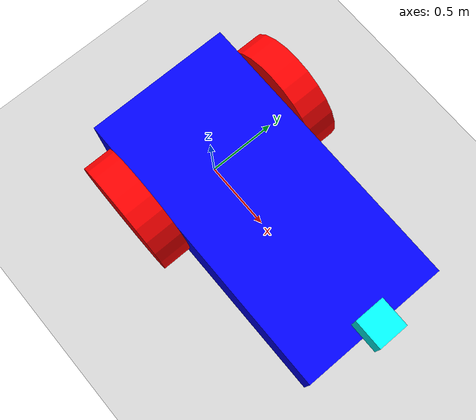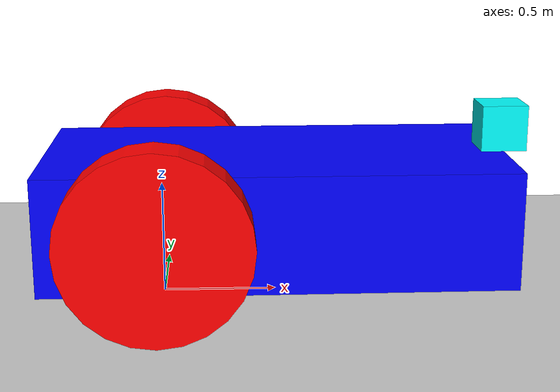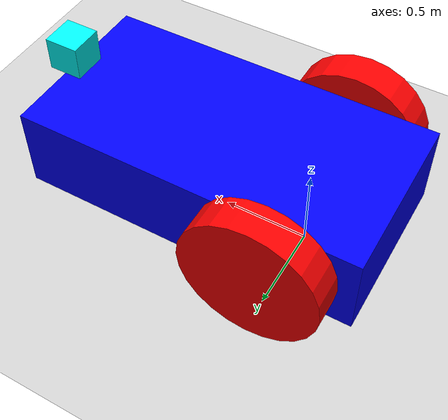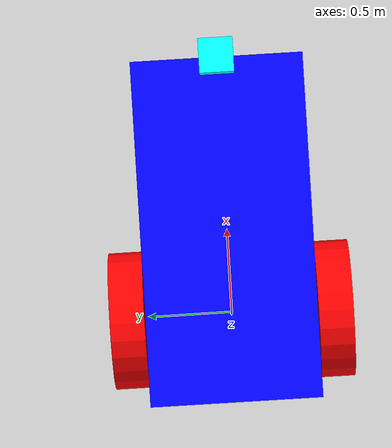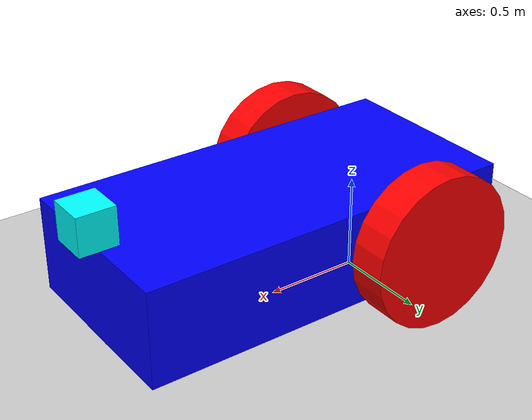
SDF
<?xml version="1.0" ?>
<sdf version="1.8">
  <world name="demo">

    <light name="sun" type="directional">
      <cast_shadows>true</cast_shadows>
      <pose>0 0 10 0 0 0</pose>
      <diffuse>0.8 0.8 0.8 1</diffuse>
      <specular>0.2 0.2 0.2 1</specular>
      <attenuation>
        <range>1000</range>
        <constant>0.9</constant>
        <linear>0.01</linear>
        <quadratic>0.001</quadratic>
      </attenuation>
      <direction>-0.5 0.1 -0.9</direction>
    </light>

    <model name="ground_plane">
      <static>true</static>
      <link name="link">
        <collision name="collision">
          <geometry>
            <plane>
              <normal>0 0 1</normal>
              <size>100 100</size>
            </plane>
          </geometry>
        </collision>
        <visual name="visual">
          <geometry>
            <plane>
              <normal>0 0 1</normal>
              <size>100 100</size>
            </plane>
          </geometry>
          <material>
            <ambient>0.8 0.8 0.8 1</ambient>
            <diffuse>0.8 0.8 0.8 1</diffuse>
            <specular>0.8 0.8 0.8 1</specular>
          </material>
        </visual>
      </link>
    </model>

    <model name="car">
      <self_collide>true</self_collide>
      <pose>0 0 0 0 0 0</pose>
      <include merge="true">
        <uri>car</uri>
      </include>

      <plugin
        filename="gz-sim-joint-state-publisher-system"
        name="gz::sim::systems::JointStatePublisher">
      </plugin>

      <plugin
        filename="gz-sim-pose-publisher-system"
        name="gz::sim::systems::PosePublisher">
        <publish_link_pose>true</publish_link_pose>
        <use_pose_vector_msg>true</use_pose_vector_msg>
        <static_publisher>true</static_publisher>
        <static_update_frequency>1</static_update_frequency>
      </plugin>

      <plugin
        filename="gz-sim-odometry-publisher-system"
        name="gz::sim::systems::OdometryPublisher">
        <odom_frame>car/odom</odom_frame>
        <robot_base_frame>car</robot_base_frame>
      </plugin>

    </model>
  </world>
</sdf>

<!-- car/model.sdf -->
<sdf version="1.11">
    <model name='car' canonical_link='chassis'>

        <!--chassis-->
        <link name='chassis'>
            <pose relative_to='__model__'>0.5 0 0.4 0 0 0</pose>
            <inertial> <!--inertial properties of the link mass, inertia matix-->
                <mass>1.14395</mass>
                <inertia>
                    <ixx>0.095329</ixx>
                    <ixy>0</ixy>
                    <ixz>0</ixz>
                    <iyy>0.381317</iyy>
                    <iyz>0</iyz>
                    <izz>0.476646</izz>
                </inertia>
            </inertial>
            <visual name='visual'>
                <geometry>
                    <box>
                        <size>2.0 1.0 0.5</size>
                    </box>
                </geometry>
                <!--Color of the link-->
                <material>
                    <ambient>0.0 0.0 1.0 1</ambient>
                    <diffuse>0.0 0.0 1.0 1</diffuse>
                    <specular>0.0 0.0 1.0 1</specular>
                </material>
            </visual>
            <collision name='collision'>
                <geometry>
                    <box>
                        <size>2.0 1.0 0.5</size>
                    </box>
                </geometry>
            </collision>
        </link>

        <!--Left wheel-->
        <link name='left_wheel'>
            <pose relative_to="chassis">-0.5 0.6 0 -1.5707 0 0</pose> <!--angles are in radian-->
            <inertial>
                <mass>1</mass>
                <inertia>
                    <ixx>0.043333</ixx>
                    <ixy>0</ixy>
                    <ixz>0</ixz>
                    <iyy>0.043333</iyy>
                    <iyz>0</iyz>
                    <izz>0.08</izz>
                </inertia>
            </inertial>
            <visual name='visual'>
                <geometry>
                    <cylinder>
                        <radius>0.4</radius>
                        <length>0.2</length>
                    </cylinder>
                </geometry>
                <material>
                    <ambient>1.0 0.0 0.0 1</ambient>
                    <diffuse>1.0 0.0 0.0 1</diffuse>
                    <specular>1.0 0.0 0.0 1</specular>
                </material>
            </visual>
            <collision name='collision'>
                <geometry>
                    <cylinder>
                        <radius>0.4</radius>
                        <length>0.2</length>
                    </cylinder>
                </geometry>
            </collision>
        </link>

        <!--The same as left wheel but with different position-->
        <link name='right_wheel'>
            <pose relative_to="chassis">-0.5 -0.6 0 -1.5707 0 0</pose> <!--angles are in radian-->
            <inertial>
                <mass>1</mass>
                <inertia>
                    <ixx>0.043333</ixx>
                    <ixy>0</ixy>
                    <ixz>0</ixz>
                    <iyy>0.043333</iyy>
                    <iyz>0</iyz>
                    <izz>0.08</izz>
                </inertia>
            </inertial>
            <visual name='visual'>
                <geometry>
                    <cylinder>
                        <radius>0.4</radius>
                        <length>0.2</length>
                    </cylinder>
                </geometry>
                <material>
                    <ambient>1.0 0.0 0.0 1</ambient>
                    <diffuse>1.0 0.0 0.0 1</diffuse>
                    <specular>1.0 0.0 0.0 1</specular>
                </material>
            </visual>
            <collision name='collision'>
                <geometry>
                    <cylinder>
                        <radius>0.4</radius>
                        <length>0.2</length>
                    </cylinder>
                </geometry>
            </collision>
        </link>

        <!--arbitrary frame-->
        <frame name="caster_frame" attached_to='chassis'>
            <pose>0.8 0 -0.2 0 0 0</pose>
        </frame>

        <!--caster wheel-->
        <link name='caster'>
            <pose relative_to='caster_frame'/>
            <inertial>
                <mass>1</mass>
                <inertia>
                    <ixx>0.016</ixx>
                    <ixy>0</ixy>
                    <ixz>0</ixz>
                    <iyy>0.016</iyy>
                    <iyz>0</iyz>
                    <izz>0.016</izz>
                </inertia>
            </inertial>
            <visual name='visual'>
                <geometry>
                    <sphere>
                        <radius>0.2</radius>
                    </sphere>
                </geometry>
                <material>
                    <ambient>0.0 1 0.0 1</ambient>
                    <diffuse>0.0 1 0.0 1</diffuse>
                    <specular>0.0 1 0.0 1</specular>
                </material>
            </visual>
            <collision name='collision'>
                <geometry>
                    <sphere>
                        <radius>0.2</radius>
                    </sphere>
                </geometry>
            </collision>
        </link>

        <!--left wheel joint-->
        <joint name='left_wheel_joint' type='revolute'>
            <pose relative_to='left_wheel'/>
            <parent>chassis</parent>
            <child>left_wheel</child>
            <axis>
                <xyz expressed_in='__model__'>0 1 0</xyz> <!--can be descired to any frame or even arbitrary frames-->
                <limit>
                    <lower>-1.79769e+308</lower>    <!--negative infinity-->
                    <upper>1.79769e+308</upper>     <!--positive infinity-->
                </limit>
            </axis>
        </joint>

        <!--right wheel joint-->
        <joint name='right_wheel_joint' type='revolute'>
            <pose relative_to='right_wheel'/>
            <parent>chassis</parent>
            <child>right_wheel</child>
            <axis>
                <xyz expressed_in='__model__'>0 1 0</xyz>
                <limit>
                    <lower>-1.79769e+308</lower>    <!--negative infinity-->
                    <upper>1.79769e+308</upper>     <!--positive infinity-->
                </limit>
            </axis>
        </joint>

        <!--caster wheel joint--> <!--pose defult value is the child-->
        <joint name='caster_joint' type='ball'>
            <parent>chassis</parent>
            <child>caster</child>
        </joint>

        <plugin filename="gz-sim-diff-drive-system" name="gz::sim::systems::DiffDrive">
            <left_joint>left_wheel_joint</left_joint>
            <right_joint>right_wheel_joint</right_joint>
            <wheel_separation>1.2</wheel_separation>
            <wheel_radius>0.4</wheel_radius>
            <odom_publish_frequency>1</odom_publish_frequency>
        </plugin>

        <plugin filename="gz-sim-sensors-system" name="gz::sim::systems::Sensors">
            <render_engine>ogre2</render_engine>
        </plugin>
        <link name="camera">
            <pose degrees="true">1.5 0 0.75 0 0 0</pose>
            <inertial auto="true">
                <density>100</density>
            </inertial>
            <collision name="collisional">
                <geometry>
                    <box>
                        <size>0.2 0.2 0.2</size>
                    </box>
                </geometry>
            </collision>
            <visual name="visual1">
                <geometry>
                    <box>
                        <size>0.2 0.2 0.2</size>
                    </box>
                </geometry>
                <material>
                    <ambient>0.0 1.0 1.0 1</ambient>
                    <diffuse>0.0 1.0 1.0 1</diffuse>
                    <specular>0.0 1.0 1.0 1</specular>
                </material>
            </visual>
            <sensor name="camera" type="camera">
                <camera>
                    <horizontal_fov>1.047</horizontal_fov>
                    <image>
                    <width>320</width>
                    <height>240</height>
                    </image>
                    <clip>
                    <near>0.1</near>
                    <far>100</far>
                    </clip>
                </camera>
                <always_on>1</always_on>
                <update_rate>30</update_rate>
                <visualize>true</visualize>
                <topic>camera</topic>
            </sensor>
        </link>

        <joint name="camera_joint" type="fixed">
            <parent>chassis</parent>
            <child>camera</child>
        </joint>
    </model>
</sdf>
